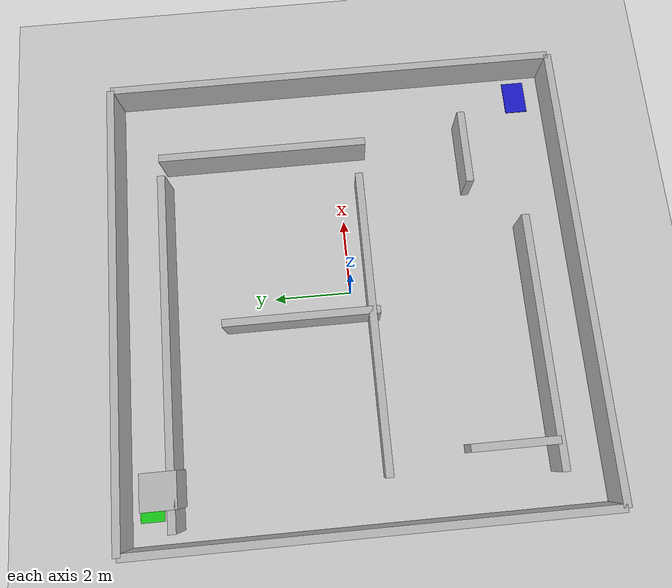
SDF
<?xml version="1.0"?>
<sdf version="1.8">
  <world name="maze08_world">
    <physics type="ode">
      <real_time_update_rate>1000.0</real_time_update_rate>
      <max_step_size>0.001</max_step_size>
      <real_time_factor>1</real_time_factor>
      <ode>
        <solver>
          <type>quick</type>
          <iters>150</iters>
          <precon_iters>0</precon_iters>
          <sor>1.400000</sor>
          <use_dynamic_moi_rescaling>1</use_dynamic_moi_rescaling>
        </solver>
        <constraints>
          <cfm>0.00001</cfm>
          <erp>0.2</erp>
          <contact_max_correcting_vel>2000.000000</contact_max_correcting_vel>
          <contact_surface_layer>0.01000</contact_surface_layer>
        </constraints>
      </ode>
    </physics>
    <plugin
      filename="gz-sim-physics-system"
      name="gz::sim::systems::Physics">
    </plugin>
    <plugin
      filename="gz-sim-user-commands-system"
      name="gz::sim::systems::UserCommands">
    </plugin>
    <plugin
      filename="gz-sim-scene-broadcaster-system"
      name="gz::sim::systems::SceneBroadcaster">
    </plugin>
    <plugin
      filename="gz-sim-sensors-system"
      name="gz::sim::systems::Sensors">
      <render_engine>ogre2</render_engine>
    </plugin>
    <plugin
      filename="gz-sim-imu-system"
      name="gz::sim::systems::Imu">
    </plugin>

    <include>
      <uri>https://fuel.gazebosim.org/1.0/OpenRobotics/models/Ground Plane</uri>
    </include>

    <include>
      <uri>https://fuel.gazebosim.org/1.0/OpenRobotics/models/Sun</uri>
    </include>

    <!-- ===== Arena: width=12 (x -6..6), height=12 (y -6..6) ===== -->
    <!-- Walls are 0.20 m thick, 1.0 m tall -->
    <!-- Outer boundary -->
    <model name="outer_top" static="true">
      <pose>0 6 0.5 0 0 0</pose>
      <link name="link">
        <collision name="col"><geometry><box><size>12 0.20 1.0</size></box></geometry></collision>
        <visual name="vis"><geometry><box><size>12 0.20 1.0</size></box></geometry></visual>
      </link>
    </model>

    <model name="outer_bottom" static="true">
      <pose>0 -6 0.5 0 0 0</pose>
      <link name="link">
        <collision name="col"><geometry><box><size>12 0.20 1.0</size></box></geometry></collision>
        <visual name="vis"><geometry><box><size>12 0.20 1.0</size></box></geometry></visual>
      </link>
    </model>

    <model name="outer_left" static="true">
      <pose>-6 0 0.5 0 0 0</pose>
      <link name="link">
        <collision name="col"><geometry><box><size>0.20 12 1.0</size></box></geometry></collision>
        <visual name="vis"><geometry><box><size>0.20 12 1.0</size></box></geometry></visual>
      </link>
    </model>

    <model name="outer_right" static="true">
      <pose>6 0 0.5 0 0 0</pose>
      <link name="link">
        <collision name="col"><geometry><box><size>0.20 12 1.0</size></box></geometry></collision>
        <visual name="vis"><geometry><box><size>0.20 12 1.0</size></box></geometry></visual>
      </link>
    </model>

    <!-- ===== Interior ===== -->

    <!-- inner long top run, with a gap near the right (keeps "frame" look) -->
    <model name="wall_top_inner" static="true">
      <!-- spans from left inner margin to x≈3.8, leaving a right opening -->
      <pose>-1.1 4.7 0.5 0 0 0</pose>
      <link name="link">
        <collision name="col"><geometry><box><size>9.0 0.20 1.0</size></box></geometry></collision>
        <visual name="vis"><geometry><box><size>9.0 0.20 1.0</size></box></geometry></visual>
      </link>
    </model>

    <!-- right vertical (inner) that drops from top opening down -->
    <model name="wall_right_vertical" static="true">
      <pose>3.9 2.0 0.5 0 0 0</pose>  <!-- y-length ≈ 5.5 m -->
      <link name="link">
        <collision name="col"><geometry><box><size>0.20 5.5 1.0</size></box></geometry></collision>
        <visual name="vis"><geometry><box><size>0.20 5.5 1.0</size></box></geometry></visual>
      </link>
    </model>

    <!-- center vertical post (creates the S-shaped route) -->
    <model name="wall_center_vertical" static="true">
      <pose>-0.7 1.3 0.5 0 0 0</pose> <!-- a bit left of center -->
      <link name="link">
        <collision name="col"><geometry><box><size>0.20 4.0 1.0</size></box></geometry></collision>
        <visual name="vis"><geometry><box><size>0.20 4.0 1.0</size></box></geometry></visual>
      </link>
    </model>

    <!-- mid horizontal ledge (lower half), left->right -->
    <model name="wall_mid_horizontal" static="true">
      <pose>-0.9 -0.5 0.5 0 0 0</pose> <!-- centered slightly left -->
      <link name="link">
        <collision name="col"><geometry><box><size>7.8 0.20 1.0</size></box></geometry></collision>
        <visual name="vis"><geometry><box><size>7.8 0.20 1.0</size></box></geometry></visual>
      </link>
    </model>

    <!-- lower-right short block  -->
    <model name="wall_bottom_right" static="true">
      <pose>3.5 -3.4 0.5 0 0 0</pose>
      <link name="link">
        <collision name="col"><geometry><box><size>2.0 0.20 1.0</size></box></geometry></collision>
        <visual name="vis"><geometry><box><size>2.0 0.20 1.0</size></box></geometry></visual>
      </link>
    </model>

    <!-- left vertical inside the frame -->
    <model name="wall_left_vertical" static="true">
      <pose>-4.3 -3.6 0.5 0 0 0</pose>
      <link name="link">
        <collision name="col"><geometry><box><size>0.20 2.2 1.0</size></box></geometry></collision>
        <visual name="vis"><geometry><box><size>0.20 2.2 1.0</size></box></geometry></visual>
      </link>
    </model>

    <!-- bottom-left long block -->
    <model name="wall_bottom_left" static="true">
      <pose>-1.8 -4.7 0.5 0 0 0</pose>
      <link name="link">
        <collision name="col"><geometry><box><size>6.5 0.20 1.0</size></box></geometry></collision>
        <visual name="vis"><geometry><box><size>6.5 0.20 1.0</size></box></geometry></visual>
      </link>
    </model>

    <!-- tiny top-left obstacle -->
    <model name="wall_start_obstacle" static="true">
      <pose>-4.6 5.0 0.5 0 0 0</pose>
      <link name="link">
        <collision name="col"><geometry><box><size>0.9 0.9 1.0</size></box></geometry></collision>
        <visual name="vis"><geometry><box><size>0.9 0.9 1.0</size></box></geometry></visual>
      </link>
    </model>

    <!-- Start / Finish plates (floor markers) -->
    <model name="start_plate" static="true">
      <pose>5.3 -5.2 0.01 0 0 0</pose>
      <link name="link">
        <collision name="col"><geometry><box><size>0.9 0.6 0.02</size></box></geometry></collision>
        <visual name="vis">
          <geometry><box><size>0.9 0.6 0.02</size></box></geometry>
          <material><ambient>0.1 0.1 0.8 1</ambient></material>
        </visual>
      </link>
    </model>

    <model name="finish_plate" static="true">
      <pose>-4.9 5.4 0.01 0 0 0</pose>
      <link name="link">
        <collision name="col"><geometry><box><size>0.9 0.6 0.02</size></box></geometry></collision>
        <visual name="vis">
          <geometry><box><size>0.9 0.6 0.02</size></box></geometry>
          <material><ambient>0.1 0.8 0.1 1</ambient></material>
        </visual>
      </link>
    </model>

    <gui fullscreen="0">
      <camera name="user_camera">
        <pose>0 0 14 0 1.57 0</pose>
        <view_controller>orbit</view_controller>
      </camera>
    </gui>
  </world>
</sdf>
